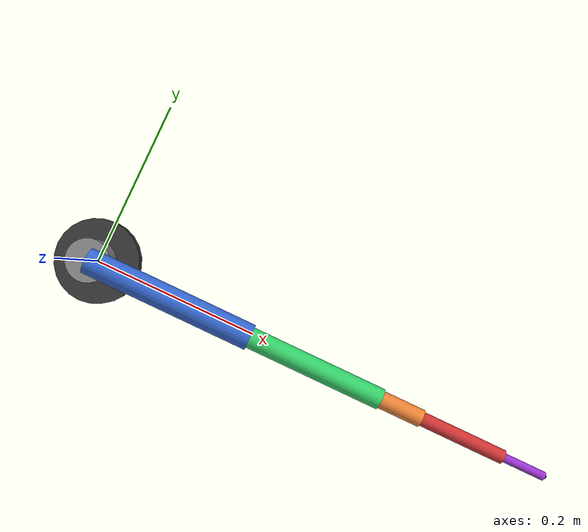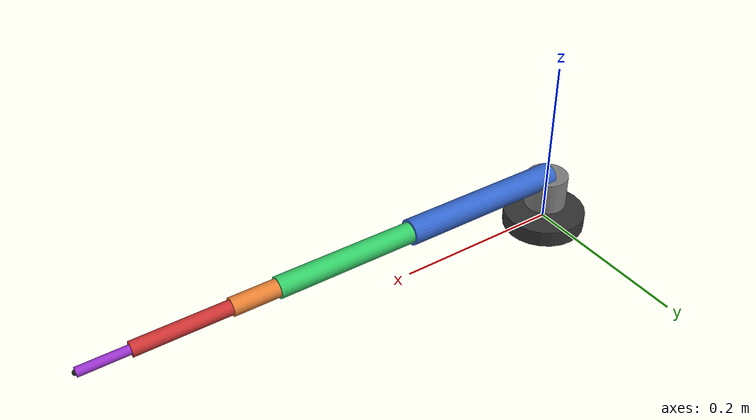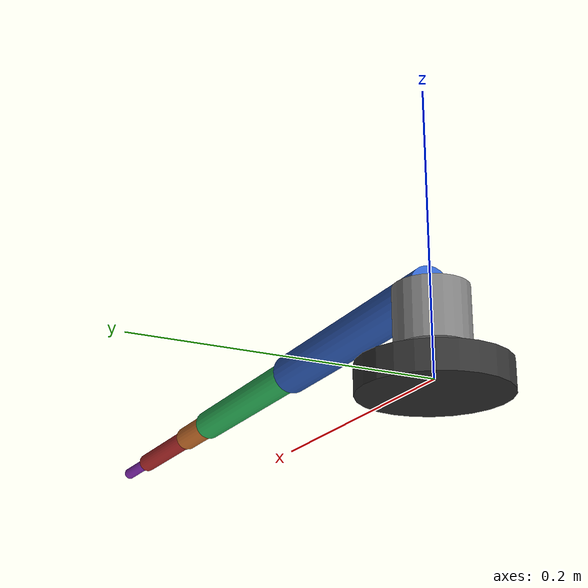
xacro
<?xml version="1.0"?>
<robot xmlns:xacro="http://www.ros.org/wiki/xacro" name="koch_v11">

  <!-- Arguments for hardware selection -->
  <xacro:arg name="use_real_hardware" default="false" />
  <xacro:arg name="usb_port" default="/dev/ttyUSB0" />
  <xacro:arg name="baud_rate" default="1000000" />

  <!-- Include your base URDF -->
  <!-- Adjust this path to match your actual URDF structure -->
  <xacro:include filename="$(find writing_robot_description)/urdf/koch_v11_arm.urdf" />

  <!-- ros2_control hardware interface -->
  <ros2_control name="koch_v11_system" type="system">

    <!-- Choose hardware based on argument -->
    <xacro:if value="$(arg use_real_hardware)">
      <!-- REAL HARDWARE: Dynamixel interface -->
      <hardware>
        <plugin>dynamixel_hardware_interface/DynamixelHardware</plugin>
        <param name="usb_port">$(arg usb_port)</param>
        <param name="baud_rate">$(arg baud_rate)</param>
      </hardware>
    </xacro:if>

    <xacro:unless value="$(arg use_real_hardware)">
      <!-- SIMULATION: Mock hardware -->
      <hardware>
        <plugin>mock_components/GenericSystem</plugin>
        <param name="mock_sensor_commands">false</param>
        <param name="state_following_offset">0.0</param>
      </hardware>
    </xacro:unless>

    <!-- Define all joints - update these limits with your measured values! -->
    <xacro:macro name="koch_joint" params="name id model min_pos max_pos">
      <joint name="${name}">
        <command_interface name="position">
          <param name="min">${min_pos}</param>
          <param name="max">${max_pos}</param>
        </command_interface>
        <state_interface name="position"/>
        <state_interface name="velocity"/>
        <xacro:if value="$(arg use_real_hardware)">
          <param name="id">${id}</param>
          <param name="model">${model}</param>
        </xacro:if>
      </joint>
    </xacro:macro>

    <!-- Joint 1 - Base (XL430) - Measured limits with safety margin -->
    <xacro:koch_joint name="shoulder_pan" id="1" model="XL430-W250"
                       min_pos="2.3685" max_pos="3.7583"/>

    <!-- Joint 2 (XL330) - Measured limits with safety margin -->
    <xacro:koch_joint name="shoulder_lift" id="2" model="XL330-M288"
                       min_pos="0.8713" max_pos="2.9314"/>

    <!-- Joint 3 (XL330) - Measured limits with safety margin -->
    <xacro:koch_joint name="elbow_flex" id="3" model="XL330-M288"
                       min_pos="-0.0936" max_pos="2.9130"/>

    <!-- Joint 4 (XL330) - Measured limits with safety margin -->
    <xacro:koch_joint name="wrist_flex" id="4" model="XL330-M288"
                       min_pos="-0.1181" max_pos="3.0572"/>

    <!-- Joint 5 (XL330) - Measured limits with safety margin -->
    <xacro:koch_joint name="wrist_roll" id="5" model="XL330-M288"
                       min_pos="-1.1888" max_pos="3.0081"/>

    <!-- Joint 6 (XL330) - Measured limits with safety margin -->
    <xacro:koch_joint name="pen_holder" id="6" model="XL330-M288"
                       min_pos="1.5861" max_pos="1.8254"/>

  </ros2_control>

</robot>

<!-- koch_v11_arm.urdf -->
<!-- Koch v1.1 Hybrid Writing Arm - 6-DOF -->
<!-- Based on working 4-DOF pattern, extended to 6 joints -->
<robot name="koch_v11_writing_arm">

  <!-- Base Link -->
  <link name="base_link">
    <visual>
      <geometry>
        <cylinder radius="0.05" length="0.02"/>
      </geometry>
      <material name="black">
        <color rgba="0.2 0.2 0.2 1"/>
      </material>
    </visual>
    <collision>
      <geometry>
        <cylinder radius="0.05" length="0.02"/>
      </geometry>
    </collision>
    <inertial>
      <mass value="0.5"/>
      <inertia ixx="0.001" ixy="0.0" ixz="0.0" iyy="0.001" iyz="0.0" izz="0.001"/>
    </inertial>
  </link>

  <!-- Joint 1: Shoulder Pan (Base Rotation) - XL430 -->
  <joint name="shoulder_pan" type="revolute">
    <parent link="base_link"/>
    <child link="shoulder_link"/>
    <origin xyz="0 0 0.02" rpy="0 0 0"/>
    <axis xyz="0 0 1"/>
    <limit lower="-3.14159" upper="3.14159" effort="2.0" velocity="3.14"/>
  </joint>

  <link name="shoulder_link">
    <visual>
      <origin xyz="0 0 0.02" rpy="0 0 0"/>
      <geometry>
        <cylinder radius="0.025" length="0.04"/>
      </geometry>
      <material name="grey">
        <color rgba="0.5 0.5 0.5 1"/>
      </material>
    </visual>
    <inertial>
      <mass value="0.3"/>
      <inertia ixx="0.001" ixy="0.0" ixz="0.0" iyy="0.001" iyz="0.0" izz="0.001"/>
    </inertial>
  </link>

  <!-- Joint 2: Shoulder Lift (Vertical) - XL430 -->
  <joint name="shoulder_lift" type="revolute">
    <parent link="shoulder_link"/>
    <child link="upper_arm_link"/>
    <origin xyz="0 0 0.04" rpy="0 0 0"/>
    <axis xyz="0 1 0"/>
    <limit lower="-2.0" upper="2.0" effort="2.0" velocity="3.14"/>
  </joint>

  <link name="upper_arm_link">
    <visual>
      <origin xyz="0.10 0 0" rpy="0 1.5708 0"/>
      <geometry>
        <cylinder radius="0.015" length="0.20"/>
      </geometry>
      <material name="blue">
        <color rgba="0.2 0.4 0.8 1"/>
      </material>
    </visual>
    <inertial>
      <mass value="0.2"/>
      <inertia ixx="0.001" ixy="0.0" ixz="0.0" iyy="0.001" iyz="0.0" izz="0.001"/>
    </inertial>
  </link>

  <!-- Joint 3: Elbow Flex - XL330 -->
  <joint name="elbow_flex" type="revolute">
    <parent link="upper_arm_link"/>
    <child link="forearm_link"/>
    <origin xyz="0.20 0 0" rpy="0 0 0"/>
    <axis xyz="0 1 0"/>
    <limit lower="-2.5" upper="2.5" effort="1.5" velocity="3.14"/>
  </joint>

  <link name="forearm_link">
    <visual>
      <origin xyz="0.08 0 0" rpy="0 1.5708 0"/>
      <geometry>
        <cylinder radius="0.012" length="0.16"/>
      </geometry>
      <material name="green">
        <color rgba="0.2 0.8 0.4 1"/>
      </material>
    </visual>
    <inertial>
      <mass value="0.15"/>
      <inertia ixx="0.0005" ixy="0.0" ixz="0.0" iyy="0.0005" iyz="0.0" izz="0.0005"/>
    </inertial>
  </link>

  <!-- Joint 4: Wrist Flex - XL330 -->
  <joint name="wrist_flex" type="revolute">
    <parent link="forearm_link"/>
    <child link="wrist_link"/>
    <origin xyz="0.16 0 0" rpy="0 0 0"/>
    <axis xyz="0 1 0"/>
    <limit lower="-2.0" upper="2.0" effort="1.5" velocity="3.14"/>
  </joint>

  <link name="wrist_link">
    <visual>
      <origin xyz="0.025 0 0" rpy="0 1.5708 0"/>
      <geometry>
        <cylinder radius="0.01" length="0.05"/>
      </geometry>
      <material name="orange">
        <color rgba="0.9 0.5 0.2 1"/>
      </material>
    </visual>
    <inertial>
      <mass value="0.1"/>
      <inertia ixx="0.0002" ixy="0.0" ixz="0.0" iyy="0.0002" iyz="0.0" izz="0.0002"/>
    </inertial>
  </link>

  <!-- Joint 5: Wrist Roll - XL330 -->
  <joint name="wrist_roll" type="revolute">
    <parent link="wrist_link"/>
    <child link="hand_link"/>
    <origin xyz="0.05 0 0" rpy="0 0 0"/>
    <axis xyz="1 0 0"/>
    <limit lower="-3.14159" upper="3.14159" effort="1.0" velocity="3.14"/>
  </joint>

  <link name="hand_link">
    <visual>
      <origin xyz="0.05 0 0" rpy="0 1.5708 0"/>
      <geometry>
        <cylinder radius="0.008" length="0.10"/>
      </geometry>
      <material name="red">
        <color rgba="0.8 0.2 0.2 1"/>
      </material>
    </visual>
    <inertial>
      <mass value="0.08"/>
      <inertia ixx="0.0001" ixy="0.0" ixz="0.0" iyy="0.0001" iyz="0.0" izz="0.0001"/>
    </inertial>
  </link>

  <!-- Joint 6: Pen Holder (Gripper) - XL330 -->
  <joint name="pen_holder" type="revolute">
    <parent link="hand_link"/>
    <child link="pen_link"/>
    <origin xyz="0.10 0 0" rpy="0 0 0"/>
    <axis xyz="0 1 0"/>
    <limit lower="-0.5" upper="0.5" effort="0.5" velocity="1.57"/>
  </joint>

  <link name="pen_link">
    <visual>
      <origin xyz="0.025 0 0" rpy="0 1.5708 0"/>
      <geometry>
        <cylinder radius="0.005" length="0.05"/>
      </geometry>
      <material name="purple">
        <color rgba="0.6 0.2 0.8 1"/>
      </material>
    </visual>
    <inertial>
      <mass value="0.02"/>
      <inertia ixx="0.00001" ixy="0.0" ixz="0.0" iyy="0.00001" iyz="0.0" izz="0.00001"/>
    </inertial>
  </link>

  <!-- Pen Tip (Fixed) -->
  <joint name="pen_tip_joint" type="fixed">
    <parent link="pen_link"/>
    <child link="pen_tip"/>
    <origin xyz="0.05 0 0" rpy="0 0 0"/>
  </joint>

  <link name="pen_tip">
    <visual>
      <geometry>
        <sphere radius="0.003"/>
      </geometry>
      <material name="black">
        <color rgba="0.1 0.1 0.1 1"/>
      </material>
    </visual>
  </link>

  <!-- ROS2 Control - Following working 4-DOF pattern -->
  <ros2_control name="koch_v11_system" type="system">

    <!-- For simulation, use mock hardware -->
    <hardware>
      <plugin>mock_components/GenericSystem</plugin>
    </hardware>

    <!-- Joint 1: shoulder_pan -->
    <joint name="shoulder_pan">
      <command_interface name="position">
        <param name="min">-3.14159</param>
        <param name="max">3.14159</param>
      </command_interface>
      <state_interface name="position">
        <param name="initial_value">0.0</param>
      </state_interface>
      <state_interface name="position"/>
      <state_interface name="velocity"/>
    </joint>

    <!-- Joint 2: shoulder_lift -->
    <joint name="shoulder_lift">
      <command_interface name="position">
        <param name="min">-2.0</param>
        <param name="max">2.0</param>
      </command_interface>
      <state_interface name="position">
        <param name="initial_value">0.0</param>
      </state_interface>
      <state_interface name="position"/>
      <state_interface name="velocity"/>
    </joint>

    <!-- Joint 3: elbow_flex -->
    <joint name="elbow_flex">
      <command_interface name="position">
        <param name="min">-2.5</param>
        <param name="max">2.5</param>
      </command_interface>
      <state_interface name="position">
        <param name="initial_value">-1.57</param>
      </state_interface>
      <state_interface name="position"/>
      <state_interface name="velocity"/>
    </joint>

    <!-- Joint 4: wrist_flex -->
    <joint name="wrist_flex">
      <command_interface name="position">
        <param name="min">-2.0</param>
        <param name="max">2.0</param>
      </command_interface>
      <state_interface name="position">
        <param name="initial_value">1.57</param>
      </state_interface>
      <state_interface name="position"/>
      <state_interface name="velocity"/>
    </joint>

    <!-- Joint 5: wrist_roll -->
    <joint name="wrist_roll">
      <command_interface name="position">
        <param name="min">-3.14159</param>
        <param name="max">3.14159</param>
      </command_interface>
      <state_interface name="position">
        <param name="initial_value">0.0</param>
      </state_interface>
      <state_interface name="position"/>
      <state_interface name="velocity"/>
    </joint>

    <!-- Joint 6: pen_holder -->
    <joint name="pen_holder">
      <command_interface name="position">
        <param name="min">-0.5</param>
        <param name="max">0.5</param>
      </command_interface>
      <state_interface name="position">
        <param name="initial_value">0.0</param>
      </state_interface>
      <state_interface name="position"/>
      <state_interface name="velocity"/>
    </joint>

  </ros2_control>

</robot>
